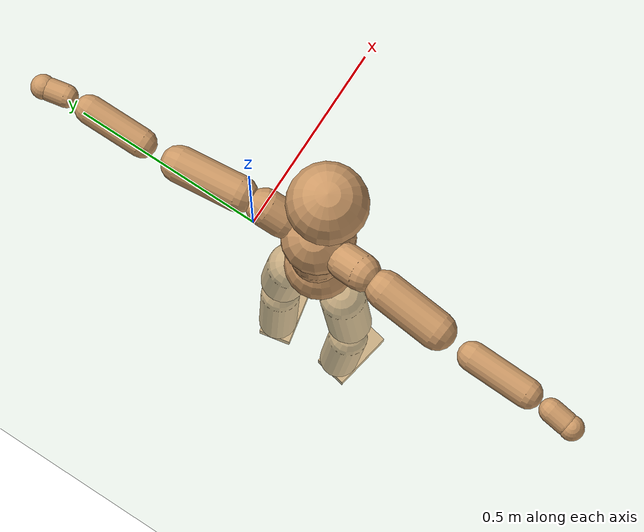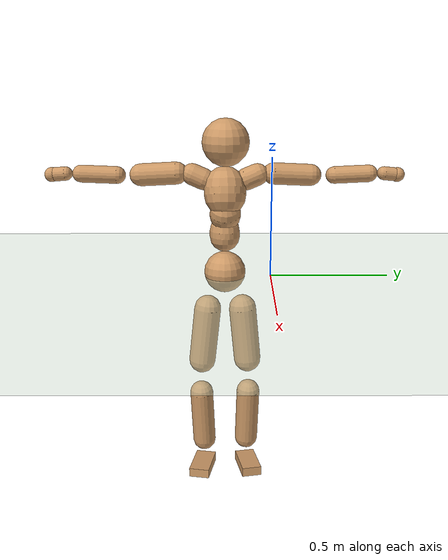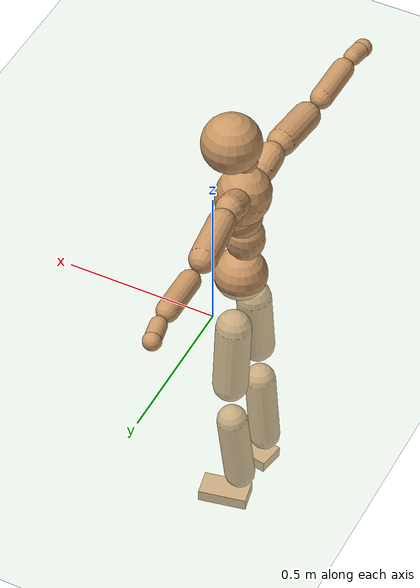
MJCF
<mujoco model="humanoid">
  <compiler coordinate="local" angle="radian"/>
  <default>
    <joint damping="0.0" armature="0.01" stiffness="0.0" limited="true"/>
    <geom conaffinity="1" condim="3" contype="7" margin="0.001" rgba="0.8 0.6 .4 1"/>
  </default>
  <asset>
    <texture type="skybox" builtin="gradient" rgb1=".4 .5 .6" rgb2="0 0 0" width="100" height="100"/>
    <texture builtin="flat" height="1278" mark="cross" markrgb="1 1 1" name="texgeom" random="0.01" rgb1="0.8 0.6 0.4" rgb2="0.8 0.6 0.4" type="cube" width="127"/>
    <texture builtin="checker" height="100" name="texplane" rgb1="0 0 0" rgb2="0.8 0.8 0.8" type="2d" width="100"/>
    <material name="MatPlane" reflectance="0.5" shininess="1" specular="1" texrepeat="60 60" texture="texplane"/>
    <material name="geom" texture="texgeom" texuniform="true"/>
  </asset>
  <worldbody>
    <light cutoff="100" diffuse="1 1 1" dir="-0 0 -1.3" directional="true" exponent="1" pos="0 0 1.3" specular=".1 .1 .1"/>
    <geom conaffinity="1" condim="3" name="floor" pos="0 0 0" rgba="0.8 0.9 0.8 1" size="100 100 .2" type="plane" material="MatPlane"/>
    <body name="Pelvis" pos="-0.0008 -0.1941 0.0167">
      <freejoint name="Pelvis"/>
      <geom type="sphere" contype="1" conaffinity="1" density="500" size="0.0875" pos="0.0000 0.0000 0.0000" name="Pelvis"/>
      <body name="L_Hip" pos="-0.0137 0.0687 -0.0896">
        <joint name="L_Hip_x" type="hinge" pos="0 0 0" axis="1 0 0" stiffness="800" damping="80" armature="0.02" range="-180.0000 180.0000"/>
        <joint name="L_Hip_y" type="hinge" pos="0 0 0" axis="0 1 0" stiffness="800" damping="80" armature="0.02" range="-180.0000 180.0000"/>
        <joint name="L_Hip_z" type="hinge" pos="0 0 0" axis="0 0 1" stiffness="800" damping="80" armature="0.02" range="-180.0000 180.0000"/>
        <geom type="capsule" contype="1" conaffinity="1" density="500" fromto="-0.0005 0.0075 -0.0799 -0.0018 0.0300 -0.3194" size="0.0585" name="L_Hip"/>
        <body name="L_Knee" pos="-0.0023 0.0374 -0.3993">
          <joint name="L_Knee_x" type="hinge" pos="0 0 0" axis="1 0 0" stiffness="800" damping="80" armature="0.02" range="-180.0000 180.0000"/>
          <joint name="L_Knee_y" type="hinge" pos="0 0 0" axis="0 1 0" stiffness="800" damping="80" armature="0.02" range="-180.0000 180.0000"/>
          <joint name="L_Knee_z" type="hinge" pos="0 0 0" axis="0 0 1" stiffness="800" damping="80" armature="0.02" range="-180.0000 180.0000"/>
          <geom type="capsule" contype="1" conaffinity="1" density="500" fromto="-0.0088 -0.0024 -0.0837 -0.0352 -0.0095 -0.3348" size="0.0511" name="L_Knee"/>
          <body name="L_Ankle" pos="-0.0439 -0.0119 -0.4185">
            <joint name="L_Ankle_x" type="hinge" pos="0 0 0" axis="1 0 0" stiffness="800" damping="80" armature="0.02" range="-180.0000 180.0000"/>
            <joint name="L_Ankle_y" type="hinge" pos="0 0 0" axis="0 1 0" stiffness="800" damping="80" armature="0.02" range="-180.0000 180.0000"/>
            <joint name="L_Ankle_z" type="hinge" pos="0 0 0" axis="0 0 1" stiffness="800" damping="80" armature="0.02" range="-180.0000 180.0000"/>
            <geom type="box" contype="1" conaffinity="1" density="500" pos="0.0579 0.0116 -0.0289" size="0.081 0.0435 0.021" quat="0.9951 0.0000 0.0000 0.0991" name="L_Ankle"/>
            <body name="L_Toe" pos="0.1158 0.0233 -0.0579">
              <joint name="L_Toe_x" type="hinge" pos="0 0 0" axis="1 0 0" stiffness="500" damping="50" armature="0.02" range="-180.0000 180.0000"/>
              <joint name="L_Toe_y" type="hinge" pos="0 0 0" axis="0 1 0" stiffness="500" damping="50" armature="0.02" range="-180.0000 180.0000"/>
              <joint name="L_Toe_z" type="hinge" pos="0 0 0" axis="0 0 1" stiffness="500" damping="50" armature="0.02" range="-180.0000 180.0000"/>
              <geom type="box" contype="1" conaffinity="1" density="500" pos="0.0000 0.0000 0.0285" size="0.0009 0.0022 0.001" quat="0.9944 0.0000 0.0000 0.1055" name="L_Toe"/>
            </body>
          </body>
        </body>
      </body>
      <body name="R_Hip" pos="-0.0093 -0.0667 -0.0885">
        <joint name="R_Hip_x" type="hinge" pos="0 0 0" axis="1 0 0" stiffness="800" damping="80" armature="0.02" range="-180.0000 180.0000"/>
        <joint name="R_Hip_y" type="hinge" pos="0 0 0" axis="0 1 0" stiffness="800" damping="80" armature="0.02" range="-180.0000 180.0000"/>
        <joint name="R_Hip_z" type="hinge" pos="0 0 0" axis="0 0 1" stiffness="800" damping="80" armature="0.02" range="-180.0000 180.0000"/>
        <geom type="capsule" contype="1" conaffinity="1" density="500" fromto="-0.0010 -0.0087 -0.0813 -0.0041 -0.0348 -0.3254" size="0.0577" name="R_Hip"/>
        <body name="R_Knee" pos="-0.0051 -0.0435 -0.4067">
          <joint name="R_Knee_x" type="hinge" pos="0 0 0" axis="1 0 0" stiffness="800" damping="80" armature="0.02" range="-180.0000 180.0000"/>
          <joint name="R_Knee_y" type="hinge" pos="0 0 0" axis="0 1 0" stiffness="800" damping="80" armature="0.02" range="-180.0000 180.0000"/>
          <joint name="R_Knee_z" type="hinge" pos="0 0 0" axis="0 0 1" stiffness="800" damping="80" armature="0.02" range="-180.0000 180.0000"/>
          <geom type="capsule" contype="1" conaffinity="1" density="500" fromto="-0.0082 0.0032 -0.0838 -0.0330 0.0127 -0.3354" size="0.0514" name="R_Knee"/>
          <body name="R_Ankle" pos="-0.0412 0.0158 -0.4192">
            <joint name="R_Ankle_x" type="hinge" pos="0 0 0" axis="1 0 0" stiffness="800" damping="80" armature="0.02" range="-180.0000 180.0000"/>
            <joint name="R_Ankle_y" type="hinge" pos="0 0 0" axis="0 1 0" stiffness="800" damping="80" armature="0.02" range="-180.0000 180.0000"/>
            <joint name="R_Ankle_z" type="hinge" pos="0 0 0" axis="0 0 1" stiffness="800" damping="80" armature="0.02" range="-180.0000 180.0000"/>
            <geom type="box" contype="1" conaffinity="1" density="500" pos="0.0596 -0.0109 -0.0249" size="0.0833 0.0451 0.0204" quat="0.9959 0.0000 0.0000 -0.0905" name="R_Ankle"/>
            <body name="R_Toe" pos="0.1192 -0.0219 -0.0498">
              <joint name="R_Toe_x" type="hinge" pos="0 0 0" axis="1 0 0" stiffness="500" damping="50" armature="0.02" range="-180.0000 180.0000"/>
              <joint name="R_Toe_y" type="hinge" pos="0 0 0" axis="0 1 0" stiffness="500" damping="50" armature="0.02" range="-180.0000 180.0000"/>
              <joint name="R_Toe_z" type="hinge" pos="0 0 0" axis="0 0 1" stiffness="500" damping="50" armature="0.02" range="-180.0000 180.0000"/>
              <geom type="box" contype="1" conaffinity="1" density="500" pos="0.0000 0.0000 0.0267" size="0.0008 0.0022 0.0011" quat="0.9967 0.0000 0.0000 -0.0811" name="R_Toe"/>
            </body>
          </body>
        </body>
      </body>
      <body name="Torso" pos="-0.0151 -0.0021 0.1013">
        <joint name="Torso_x" type="hinge" pos="0 0 0" axis="1 0 0" stiffness="1000" damping="100" armature="0.02" range="-180.0000 180.0000"/>
        <joint name="Torso_y" type="hinge" pos="0 0 0" axis="0 1 0" stiffness="1000" damping="100" armature="0.02" range="-180.0000 180.0000"/>
        <joint name="Torso_z" type="hinge" pos="0 0 0" axis="0 0 1" stiffness="1000" damping="100" armature="0.02" range="-180.0000 180.0000"/>
        <geom type="capsule" contype="1" conaffinity="1" density="500" fromto="0.0010 0.0020 0.0744 0.0007 0.0014 0.0496" size="0.063" name="Torso"/>
        <body name="Spine" pos="0.0016 0.0034 0.124">
          <joint name="Spine_x" type="hinge" pos="0 0 0" axis="1 0 0" stiffness="1000" damping="100" armature="0.02" range="-180.0000 180.0000"/>
          <joint name="Spine_y" type="hinge" pos="0 0 0" axis="0 1 0" stiffness="1000" damping="100" armature="0.02" range="-180.0000 180.0000"/>
          <joint name="Spine_z" type="hinge" pos="0 0 0" axis="0 0 1" stiffness="1000" damping="100" armature="0.02" range="-180.0000 180.0000"/>
          <geom type="capsule" contype="1" conaffinity="1" density="500" fromto="0.0146 0.0009 0.0289 0.0097 0.0006 0.0193" size="0.065" name="Spine"/>
          <body name="Chest" pos="0.0243 0.0014 0.0482">
            <joint name="Chest_x" type="hinge" pos="0 0 0" axis="1 0 0" stiffness="1000" damping="100" armature="0.02" range="-180.0000 180.0000"/>
            <joint name="Chest_y" type="hinge" pos="0 0 0" axis="0 1 0" stiffness="1000" damping="100" armature="0.02" range="-180.0000 180.0000"/>
            <joint name="Chest_z" type="hinge" pos="0 0 0" axis="0 0 1" stiffness="1000" damping="100" armature="0.02" range="-180.0000 180.0000"/>
            <geom type="capsule" contype="1" conaffinity="1" density="500" fromto="-0.0210 -0.0014 0.0843 -0.0140 -0.0009 0.0562" size="0.088" name="Chest"/>
            <body name="Neck" pos="-0.035 -0.0041 0.202">
              <joint name="Neck_x" type="hinge" pos="0 0 0" axis="1 0 0" stiffness="500" damping="50" armature="0.02" range="-180.0000 180.0000"/>
              <joint name="Neck_y" type="hinge" pos="0 0 0" axis="0 1 0" stiffness="500" damping="50" armature="0.02" range="-180.0000 180.0000"/>
              <joint name="Neck_z" type="hinge" pos="0 0 0" axis="0 0 1" stiffness="500" damping="50" armature="0.02" range="-180.0000 180.0000"/>
              <geom type="capsule" contype="1" conaffinity="1" density="500" fromto="0.0114 0.0012 0.0143 0.0457 0.0047 0.0572" size="0.039" name="Neck"/>
              <body name="Head" pos="0.0571 0.0058 0.0715">
                <joint name="Head_x" type="hinge" pos="0 0 0" axis="1 0 0" stiffness="500" damping="50" armature="0.02" range="-180.0000 180.0000"/>
                <joint name="Head_y" type="hinge" pos="0 0 0" axis="0 1 0" stiffness="500" damping="50" armature="0.02" range="-180.0000 180.0000"/>
                <joint name="Head_z" type="hinge" pos="0 0 0" axis="0 0 1" stiffness="500" damping="50" armature="0.02" range="-180.0000 180.0000"/>
                <geom type="sphere" contype="1" conaffinity="1" density="500" size="0.0960" pos="0.0000 0.0000 0.0000" name="Head"/>
              </body>
            </body>
            <body name="L_Thorax" pos="-0.0327 0.07 0.1104">
              <joint name="L_Thorax_x" type="hinge" pos="0 0 0" axis="1 0 0" stiffness="500" damping="50" armature="0.02" range="-180.0000 180.0000"/>
              <joint name="L_Thorax_y" type="hinge" pos="0 0 0" axis="0 1 0" stiffness="500" damping="50" armature="0.02" range="-180.0000 180.0000"/>
              <joint name="L_Thorax_z" type="hinge" pos="0 0 0" axis="0 0 1" stiffness="500" damping="50" armature="0.02" range="-180.0000 180.0000"/>
              <geom type="capsule" contype="1" conaffinity="1" density="500" fromto="-0.0013 0.0155 0.0063 -0.0051 0.0618 0.0252" size="0.0458" name="L_Thorax"/>
              <body name="L_Shoulder" pos="-0.0064 0.0773 0.0315">
                <joint name="L_Shoulder_x" type="hinge" pos="0 0 0" axis="1 0 0" stiffness="500" damping="50" armature="0.02" range="-720.0000 720.0000"/>
                <joint name="L_Shoulder_y" type="hinge" pos="0 0 0" axis="0 1 0" stiffness="500" damping="50" armature="0.02" range="-720.0000 720.0000"/>
                <joint name="L_Shoulder_z" type="hinge" pos="0 0 0" axis="0 0 1" stiffness="500" damping="50" armature="0.02" range="-720.0000 720.0000"/>
                <geom type="capsule" contype="1" conaffinity="1" density="500" fromto="-0.0052 0.0516 -0.0030 -0.0208 0.2063 -0.0120" size="0.0446" name="L_Shoulder"/>
                <body name="L_Elbow" pos="-0.0259 0.2579 -0.015">
                  <joint name="L_Elbow_x" type="hinge" pos="0 0 0" axis="1 0 0" stiffness="500" damping="50" armature="0.02" range="-720.0000 720.0000"/>
                  <joint name="L_Elbow_y" type="hinge" pos="0 0 0" axis="0 1 0" stiffness="500" damping="50" armature="0.02" range="-720.0000 720.0000"/>
                  <joint name="L_Elbow_z" type="hinge" pos="0 0 0" axis="0 0 1" stiffness="500" damping="50" armature="0.02" range="-720.0000 720.0000"/>
                  <geom type="capsule" contype="1" conaffinity="1" density="500" fromto="-0.0005 0.0480 0.0021 -0.0021 0.1919 0.0085" size="0.0356" name="L_Elbow"/>
                  <body name="L_Wrist" pos="-0.0026 0.2398 0.0106">
                    <joint name="L_Wrist_x" type="hinge" pos="0 0 0" axis="1 0 0" stiffness="300" damping="30" armature="0.02" range="-180.0000 180.0000"/>
                    <joint name="L_Wrist_y" type="hinge" pos="0 0 0" axis="0 1 0" stiffness="300" damping="30" armature="0.02" range="-180.0000 180.0000"/>
                    <joint name="L_Wrist_z" type="hinge" pos="0 0 0" axis="0 0 1" stiffness="300" damping="30" armature="0.02" range="-180.0000 180.0000"/>
                    <geom type="capsule" contype="1" conaffinity="1" density="500" fromto="-0.0025 0.0148 -0.0018 -0.0101 0.0593 -0.0074" size="0.0278" name="L_Wrist"/>
                    <body name="L_Hand" pos="-0.0126 0.0741 -0.0092">
                      <joint name="L_Hand_x" type="hinge" pos="0 0 0" axis="1 0 0" stiffness="300" damping="30" armature="0.02" range="-180.0000 180.0000"/>
                      <joint name="L_Hand_y" type="hinge" pos="0 0 0" axis="0 1 0" stiffness="300" damping="30" armature="0.02" range="-180.0000 180.0000"/>
                      <joint name="L_Hand_z" type="hinge" pos="0 0 0" axis="0 0 1" stiffness="300" damping="30" armature="0.02" range="-180.0000 180.0000"/>
                      <geom type="sphere" contype="1" conaffinity="1" density="500" size="0.0299" pos="0.0000 0.0000 0.0000" name="L_Hand"/>
                    </body>
                  </body>
                </body>
              </body>
            </body>
            <body name="R_Thorax" pos="-0.0371 -0.0727 0.109">
              <joint name="R_Thorax_x" type="hinge" pos="0 0 0" axis="1 0 0" stiffness="500" damping="50" armature="0.02" range="-180.0000 180.0000"/>
              <joint name="R_Thorax_y" type="hinge" pos="0 0 0" axis="0 1 0" stiffness="500" damping="50" armature="0.02" range="-180.0000 180.0000"/>
              <joint name="R_Thorax_z" type="hinge" pos="0 0 0" axis="0 0 1" stiffness="500" damping="50" armature="0.02" range="-180.0000 180.0000"/>
              <geom type="capsule" contype="1" conaffinity="1" density="500" fromto="-0.0016 -0.0160 0.0068 -0.0063 -0.0639 0.0271" size="0.0447" name="R_Thorax"/>
              <body name="R_Shoulder" pos="-0.0079 -0.0799 0.0339">
                <joint name="R_Shoulder_x" type="hinge" pos="0 0 0" axis="1 0 0" stiffness="500" damping="50" armature="0.02" range="-720.0000 720.0000"/>
                <joint name="R_Shoulder_y" type="hinge" pos="0 0 0" axis="0 1 0" stiffness="500" damping="50" armature="0.02" range="-720.0000 720.0000"/>
                <joint name="R_Shoulder_z" type="hinge" pos="0 0 0" axis="0 0 1" stiffness="500" damping="50" armature="0.02" range="-720.0000 720.0000"/>
                <geom type="capsule" contype="1" conaffinity="1" density="500" fromto="-0.0041 -0.0497 -0.0031 -0.0164 -0.1988 -0.0125" size="0.0464" name="R_Shoulder"/>
                <body name="R_Elbow" pos="-0.0205 -0.2485 -0.0157">
                  <joint name="R_Elbow_x" type="hinge" pos="0 0 0" axis="1 0 0" stiffness="500" damping="50" armature="0.02" range="-720.0000 720.0000"/>
                  <joint name="R_Elbow_y" type="hinge" pos="0 0 0" axis="0 1 0" stiffness="500" damping="50" armature="0.02" range="-720.0000 720.0000"/>
                  <joint name="R_Elbow_z" type="hinge" pos="0 0 0" axis="0 0 1" stiffness="500" damping="50" armature="0.02" range="-720.0000 720.0000"/>
                  <geom type="capsule" contype="1" conaffinity="1" density="500" fromto="-0.0014 -0.0499 0.0016 -0.0056 -0.1995 0.0065" size="0.0361" name="R_Elbow"/>
                  <body name="R_Wrist" pos="-0.007 -0.2494 0.0081">
                    <joint name="R_Wrist_x" type="hinge" pos="0 0 0" axis="1 0 0" stiffness="300" damping="30" armature="0.02" range="-180.0000 180.0000"/>
                    <joint name="R_Wrist_y" type="hinge" pos="0 0 0" axis="0 1 0" stiffness="300" damping="30" armature="0.02" range="-180.0000 180.0000"/>
                    <joint name="R_Wrist_z" type="hinge" pos="0 0 0" axis="0 0 1" stiffness="300" damping="30" armature="0.02" range="-180.0000 180.0000"/>
                    <geom type="capsule" contype="1" conaffinity="1" density="500" fromto="-0.0019 -0.0150 -0.0014 -0.0077 -0.0601 -0.0055" size="0.0287" name="R_Wrist"/>
                    <body name="R_Hand" pos="-0.0097 -0.0751 -0.0069">
                      <joint name="R_Hand_x" type="hinge" pos="0 0 0" axis="1 0 0" stiffness="300" damping="30" armature="0.02" range="-180.0000 180.0000"/>
                      <joint name="R_Hand_y" type="hinge" pos="0 0 0" axis="0 1 0" stiffness="300" damping="30" armature="0.02" range="-180.0000 180.0000"/>
                      <joint name="R_Hand_z" type="hinge" pos="0 0 0" axis="0 0 1" stiffness="300" damping="30" armature="0.02" range="-180.0000 180.0000"/>
                      <geom type="sphere" contype="1" conaffinity="1" density="500" size="0.0302" pos="0.0000 0.0000 0.0000" name="R_Hand"/>
                    </body>
                  </body>
                </body>
              </body>
            </body>
          </body>
        </body>
      </body>
    </body>
  </worldbody>
  <actuator>
    <motor name="L_Hip_x" joint="L_Hip_x" gear="500"/>
    <motor name="L_Hip_y" joint="L_Hip_y" gear="500"/>
    <motor name="L_Hip_z" joint="L_Hip_z" gear="500"/>
    <motor name="L_Knee_x" joint="L_Knee_x" gear="500"/>
    <motor name="L_Knee_y" joint="L_Knee_y" gear="500"/>
    <motor name="L_Knee_z" joint="L_Knee_z" gear="500"/>
    <motor name="L_Ankle_x" joint="L_Ankle_x" gear="500"/>
    <motor name="L_Ankle_y" joint="L_Ankle_y" gear="500"/>
    <motor name="L_Ankle_z" joint="L_Ankle_z" gear="500"/>
    <motor name="L_Toe_x" joint="L_Toe_x" gear="500"/>
    <motor name="L_Toe_y" joint="L_Toe_y" gear="500"/>
    <motor name="L_Toe_z" joint="L_Toe_z" gear="500"/>
    <motor name="R_Hip_x" joint="R_Hip_x" gear="500"/>
    <motor name="R_Hip_y" joint="R_Hip_y" gear="500"/>
    <motor name="R_Hip_z" joint="R_Hip_z" gear="500"/>
    <motor name="R_Knee_x" joint="R_Knee_x" gear="500"/>
    <motor name="R_Knee_y" joint="R_Knee_y" gear="500"/>
    <motor name="R_Knee_z" joint="R_Knee_z" gear="500"/>
    <motor name="R_Ankle_x" joint="R_Ankle_x" gear="500"/>
    <motor name="R_Ankle_y" joint="R_Ankle_y" gear="500"/>
    <motor name="R_Ankle_z" joint="R_Ankle_z" gear="500"/>
    <motor name="R_Toe_x" joint="R_Toe_x" gear="500"/>
    <motor name="R_Toe_y" joint="R_Toe_y" gear="500"/>
    <motor name="R_Toe_z" joint="R_Toe_z" gear="500"/>
    <motor name="Torso_x" joint="Torso_x" gear="500"/>
    <motor name="Torso_y" joint="Torso_y" gear="500"/>
    <motor name="Torso_z" joint="Torso_z" gear="500"/>
    <motor name="Spine_x" joint="Spine_x" gear="500"/>
    <motor name="Spine_y" joint="Spine_y" gear="500"/>
    <motor name="Spine_z" joint="Spine_z" gear="500"/>
    <motor name="Chest_x" joint="Chest_x" gear="500"/>
    <motor name="Chest_y" joint="Chest_y" gear="500"/>
    <motor name="Chest_z" joint="Chest_z" gear="500"/>
    <motor name="Neck_x" joint="Neck_x" gear="500"/>
    <motor name="Neck_y" joint="Neck_y" gear="500"/>
    <motor name="Neck_z" joint="Neck_z" gear="500"/>
    <motor name="Head_x" joint="Head_x" gear="500"/>
    <motor name="Head_y" joint="Head_y" gear="500"/>
    <motor name="Head_z" joint="Head_z" gear="500"/>
    <motor name="L_Thorax_x" joint="L_Thorax_x" gear="500"/>
    <motor name="L_Thorax_y" joint="L_Thorax_y" gear="500"/>
    <motor name="L_Thorax_z" joint="L_Thorax_z" gear="500"/>
    <motor name="L_Shoulder_x" joint="L_Shoulder_x" gear="500"/>
    <motor name="L_Shoulder_y" joint="L_Shoulder_y" gear="500"/>
    <motor name="L_Shoulder_z" joint="L_Shoulder_z" gear="500"/>
    <motor name="L_Elbow_x" joint="L_Elbow_x" gear="500"/>
    <motor name="L_Elbow_y" joint="L_Elbow_y" gear="500"/>
    <motor name="L_Elbow_z" joint="L_Elbow_z" gear="500"/>
    <motor name="L_Wrist_x" joint="L_Wrist_x" gear="500"/>
    <motor name="L_Wrist_y" joint="L_Wrist_y" gear="500"/>
    <motor name="L_Wrist_z" joint="L_Wrist_z" gear="500"/>
    <motor name="L_Hand_x" joint="L_Hand_x" gear="500"/>
    <motor name="L_Hand_y" joint="L_Hand_y" gear="500"/>
    <motor name="L_Hand_z" joint="L_Hand_z" gear="500"/>
    <motor name="R_Thorax_x" joint="R_Thorax_x" gear="500"/>
    <motor name="R_Thorax_y" joint="R_Thorax_y" gear="500"/>
    <motor name="R_Thorax_z" joint="R_Thorax_z" gear="500"/>
    <motor name="R_Shoulder_x" joint="R_Shoulder_x" gear="500"/>
    <motor name="R_Shoulder_y" joint="R_Shoulder_y" gear="500"/>
    <motor name="R_Shoulder_z" joint="R_Shoulder_z" gear="500"/>
    <motor name="R_Elbow_x" joint="R_Elbow_x" gear="500"/>
    <motor name="R_Elbow_y" joint="R_Elbow_y" gear="500"/>
    <motor name="R_Elbow_z" joint="R_Elbow_z" gear="500"/>
    <motor name="R_Wrist_x" joint="R_Wrist_x" gear="500"/>
    <motor name="R_Wrist_y" joint="R_Wrist_y" gear="500"/>
    <motor name="R_Wrist_z" joint="R_Wrist_z" gear="500"/>
    <motor name="R_Hand_x" joint="R_Hand_x" gear="500"/>
    <motor name="R_Hand_y" joint="R_Hand_y" gear="500"/>
    <motor name="R_Hand_z" joint="R_Hand_z" gear="500"/>
  </actuator>
  <contact>
    <exclude body1="Torso" body2="Chest"/>
    <exclude body1="Head" body2="Chest"/>
    <exclude body1="R_Knee" body2="R_Toe"/>
    <exclude body1="R_Knee" body2="L_Ankle"/>
    <exclude body1="R_Knee" body2="L_Toe"/>
    <exclude body1="L_Knee" body2="L_Toe"/>
    <exclude body1="L_Knee" body2="R_Ankle"/>
    <exclude body1="L_Knee" body2="R_Toe"/>
    <exclude body1="L_Shoulder" body2="Chest"/>
    <exclude body1="R_Shoulder" body2="Chest"/>
  </contact>
  <sensor/>
  <size njmax="700" nconmax="700"/>
</mujoco>
